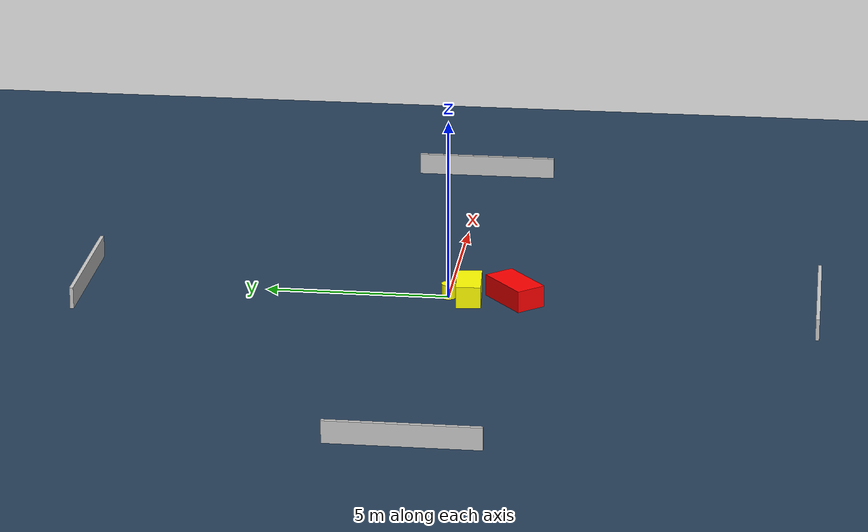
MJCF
<?xml version="1.0" ?>
<mujoco model="generated_environment">
  <option timestep="0.01" integrator="RK4" cone="elliptic"/>
  <default>
    <geom density="1"/>
  </default>
  <asset>
    <texture builtin="gradient" height="3072" name="skybox" rgb1="0.3 0.5 0.7" rgb2="0 0 0" type="skybox" width="512"/>
    <texture builtin="checker" height="300" name="groundplane" rgb1="0.2 0.3 0.4" rgb2="0.1 0.2 0.3" type="2d" width="300"/>
    <material name="groundplane" reflectance="0.2" texrepeat="5 5" texture="groundplane"/>
  </asset>
  <worldbody>
    <light dir="0 0 -1" directional="true" pos="0 0 1.5"/>
    <geom condim="3" friction="0.5 0.005 0.001" material="groundplane" name="floor" pos="0 0 0" size="0 0 0.05" type="plane"/>
    <body name="walls">
      <geom name="wall_1" condim="4" pos="-10.0 0.0 0.3" rgba="0.800000011920929 0.800000011920929 0.800000011920929 1.0" size="0.05 2.0 0.3" type="box"/>
      <geom name="wall_2" condim="4" pos="10.0 0.0 0.3" rgba="0.800000011920929 0.800000011920929 0.800000011920929 1.0" size="0.05 2.0 0.3" type="box"/>
      <geom name="wall_3" condim="4" pos="0.0 -10.0 0.3" rgba="0.800000011920929 0.800000011920929 0.800000011920929 1.0" size="2.0 0.05 0.3" type="box"/>
      <geom name="wall_4" condim="4" pos="0.0 10.0 0.3" rgba="0.800000011920929 0.800000011920929 0.800000011920929 1.0" size="2.0 0.05 0.3" type="box"/>
    </body>
    <body name="robot">
      <joint name="joint_x" type="slide" pos="0 0 0" axis="1 0 0"/>
      <joint name="joint_y" type="slide" pos="0 0 0" axis="0 1 0"/>
      <geom name="robot" type="cylinder" pos="0.0 0.0 0.2" size="0.2 0.2 0.0" mass="5.0" friction="1.0 0.005 0.0001" condim="4" rgba="1.0 1.0 0.0 1.0"/>
    </body>
    <body name="obstacle_1_movable">
      <geom name="obstacle_1_movable" condim="4" pos="-0.11948753963681297 -0.5641295153767477 0.3" euler="0 0 274.2581220712963" friction="0.0 0.005 0.001" rgba="1.0 1.0 0.0 1.0" size="0.3390190240479807 0.6446798809933514 0.3" type="box" mass="0.1"/>
      <joint type="free"/>
    </body>
    <body name="obstacle_2_static">
      <geom name="obstacle_2_static" condim="4" pos="-0.06622765213677272 -1.8115486413751158 0.3" euler="0 0 219.79703417416786" friction="0.0 0.005 0.001" rgba="1.0 0.0 0.0 1.0" size="0.7791554425226821 0.4244125538983236 0.3" type="box"/>
    </body>
  </worldbody>
  <actuator>
    <motor name="actuator_x" joint="joint_x" gear="1" ctrlrange="-1 1"/>
    <motor name="actuator_y" joint="joint_y" gear="1" ctrlrange="-1 1"/>
  </actuator>
</mujoco>
